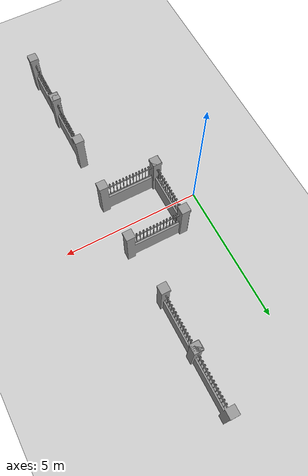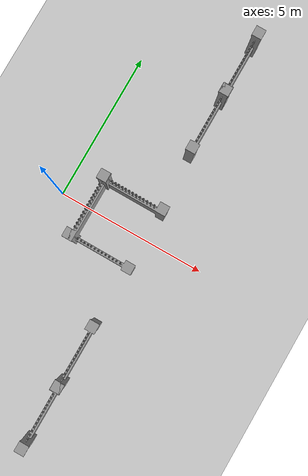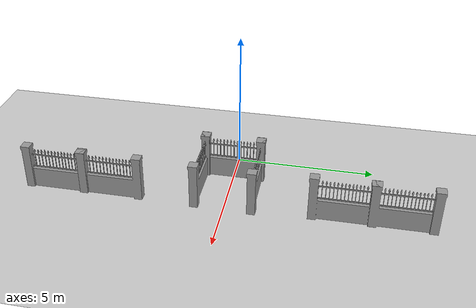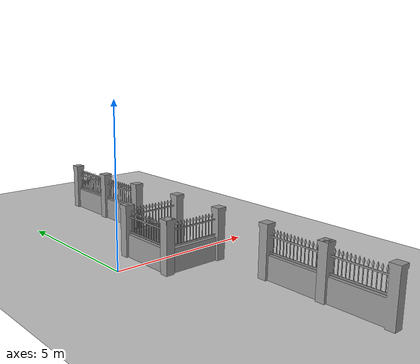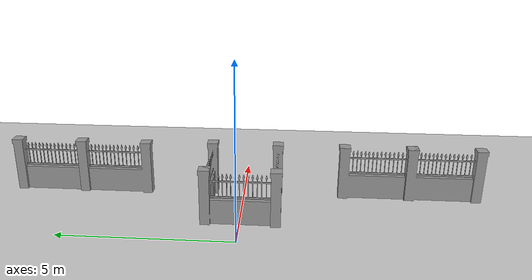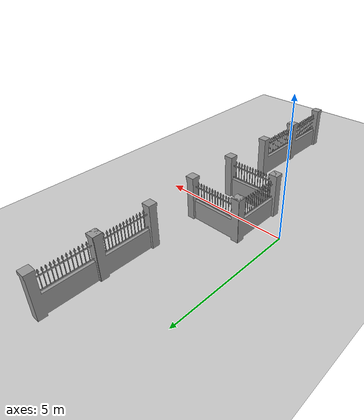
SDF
<sdf version="1.6">
 <world name="default">
  <light name="sun" type="directional">
   <pose>0 0 10 0 -0 0</pose>
   <diffuse>0.8 0.8 0.8 1</diffuse>
   <specular>0.2 0.2 0.2 1</specular>
   <attenuation>
    <range>1000</range>
    <constant>0.9</constant>
    <linear>0.01</linear>
    <quadratic>0.001</quadratic>
   </attenuation>
   <direction>-0.5 0.1 -0.9</direction>
  </light>
  <model name="ground_plane">
   <static>1</static>
   <link name="link">
    <collision name="collision">
     <geometry><plane><normal>0 0 1</normal><size>100 100</size></plane></geometry>
     <surface>
      <contact><collide_bitmask>65535</collide_bitmask></contact>
      <friction><ode><mu>100</mu><mu2>50</mu2></ode></friction>
     </surface>
    </collision>
    <visual name="visual">
     <cast_shadows>0</cast_shadows>
     <geometry><plane><normal>0 0 1</normal><size>100 100</size></plane></geometry>
     <material>
      <script><uri>file://media/materials/scripts/gazebo.material</uri><name>Gazebo/Grey</name></script>
     </material>
    </visual>
   </link>
  </model>
  <gravity>0 0 -9.8</gravity>
  <magnetic_field>6e-06 2.3e-05 -4.2e-05</magnetic_field>
  <atmosphere type="adiabatic"/>
  <physics name="default_physics" default="0" type="ode">
   <max_step_size>0.001</max_step_size>
   <real_time_factor>1</real_time_factor>
   <real_time_update_rate>1000</real_time_update_rate>
  </physics>
  <scene><ambient>0.4 0.4 0.4 1</ambient><background>0.7 0.7 0.7 1</background><shadows>1</shadows></scene>
  <audio><device>default</device></audio>
  <spherical_coordinates>
   <surface_model>EARTH_WGS84</surface_model>
   <latitude_deg>0</latitude_deg>
   <longitude_deg>0</longitude_deg>
   <elevation>0</elevation>
   <heading_deg>0</heading_deg>
  </spherical_coordinates>
  <model name="between">
   <link name="link_2">
    <inertial>
     <mass>1</mass>
     <inertia>
      <ixx>0.166667</ixx>
      <ixy>0</ixy>
      <ixz>0</ixz>
      <iyy>0.166667</iyy>
      <iyz>0</iyz>
      <izz>0.166667</izz>
     </inertia>
    </inertial>
    <pose>-1.3748 -0.012991 0 0 0 -1.5708</pose>
    <visual name="visual">
     <geometry><mesh><uri>file://meshes/wall.stl</uri><scale>1 1 1</scale></mesh></geometry>
     <material>
      <lighting>1</lighting>
      <script><uri>file://media/materials/scripts/gazebo.material</uri><name>Gazebo/Grey</name></script>
      <shader type="vertex"><normal_map>__default__</normal_map></shader>
      <ambient>0.3 0.3 0.3 1</ambient>
      <diffuse>0.7 0.7 0.7 1</diffuse>
      <specular>0.01 0.01 0.01 1</specular>
      <emissive>0 0 0 1</emissive>
     </material>
    </visual>
    <collision name="collision">
     <geometry><mesh><uri>file://meshes/wall.stl</uri><scale>1 1 1</scale></mesh></geometry>
     <surface>
      <friction>
       <ode><mu>1</mu><mu2>1</mu2><fdir1>0 0 0</fdir1><slip1>0</slip1><slip2>0</slip2></ode>
       <torsional>
        <coefficient>1</coefficient>
        <patch_radius>0</patch_radius>
        <surface_radius>0</surface_radius>
        <use_patch_radius>1</use_patch_radius>
        <ode><slip>0</slip></ode>
       </torsional>
      </friction>
      <bounce><restitution_coefficient>0</restitution_coefficient><threshold>1e+06</threshold></bounce>
      <contact>
       <collide_without_contact>0</collide_without_contact>
       <collide_without_contact_bitmask>1</collide_without_contact_bitmask>
       <collide_bitmask>1</collide_bitmask>
       <ode>
        <soft_cfm>0</soft_cfm>
        <soft_erp>0.2</soft_erp>
        <kp>1e+13</kp>
        <kd>1</kd>
        <max_vel>0.01</max_vel>
        <min_depth>0</min_depth>
       </ode>
       <bullet>
        <split_impulse>1</split_impulse>
        <split_impulse_penetration_threshold>-0.01</split_impulse_penetration_threshold>
        <soft_cfm>0</soft_cfm>
        <soft_erp>0.2</soft_erp>
        <kp>1e+13</kp>
        <kd>1</kd>
       </bullet>
      </contact>
     </surface>
    </collision>
   </link>
   <link name="link_2_clone">
    <inertial>
     <mass>1</mass>
     <inertia>
      <ixx>0.166667</ixx>
      <ixy>0</ixy>
      <ixz>0</ixz>
      <iyy>0.166667</iyy>
      <iyz>0</iyz>
      <izz>0.166667</izz>
     </inertia>
    </inertial>
    <pose>0.567999 -4.01809 0 0 0 -1.5708</pose>
    <visual name="visual">
     <geometry><mesh><uri>file://meshes/wall.stl</uri><scale>1 1 1</scale></mesh></geometry>
     <material>
      <lighting>1</lighting>
      <script><uri>file://media/materials/scripts/gazebo.material</uri><name>Gazebo/Grey</name></script>
      <shader type="vertex"><normal_map>__default__</normal_map></shader>
      <ambient>0.3 0.3 0.3 1</ambient>
      <diffuse>0.7 0.7 0.7 1</diffuse>
      <specular>0.01 0.01 0.01 1</specular>
      <emissive>0 0 0 1</emissive>
     </material>
    </visual>
    <collision name="collision">
     <geometry><mesh><uri>file://meshes/wall.stl</uri><scale>1 1 1</scale></mesh></geometry>
     <surface>
      <friction>
       <ode><mu>1</mu><mu2>1</mu2><fdir1>0 0 0</fdir1><slip1>0</slip1><slip2>0</slip2></ode>
       <torsional>
        <coefficient>1</coefficient>
        <patch_radius>0</patch_radius>
        <surface_radius>0</surface_radius>
        <use_patch_radius>1</use_patch_radius>
        <ode><slip>0</slip></ode>
       </torsional>
      </friction>
      <bounce><restitution_coefficient>0</restitution_coefficient><threshold>1e+06</threshold></bounce>
      <contact>
       <collide_without_contact>0</collide_without_contact>
       <collide_without_contact_bitmask>1</collide_without_contact_bitmask>
       <collide_bitmask>1</collide_bitmask>
       <ode>
        <soft_cfm>0</soft_cfm>
        <soft_erp>0.2</soft_erp>
        <kp>1e+13</kp>
        <kd>1</kd>
        <max_vel>0.01</max_vel>
        <min_depth>0</min_depth>
       </ode>
       <bullet>
        <split_impulse>1</split_impulse>
        <split_impulse_penetration_threshold>-0.01</split_impulse_penetration_threshold>
        <soft_cfm>0</soft_cfm>
        <soft_erp>0.2</soft_erp>
        <kp>1e+13</kp>
        <kd>1</kd>
       </bullet>
      </contact>
     </surface>
    </collision>
   </link>
   <link name="link_2_clone_0">
    <inertial>
     <mass>1</mass>
     <inertia>
      <ixx>0.166667</ixx>
      <ixy>0</ixy>
      <ixz>0</ixz>
      <iyy>0.166667</iyy>
      <iyz>0</iyz>
      <izz>0.166667</izz>
     </inertia>
    </inertial>
    <pose>0.490312 4.0369 0 0 0 -1.5708</pose>
    <visual name="visual">
     <geometry><mesh><uri>file://meshes/wall.stl</uri><scale>1 1 1</scale></mesh></geometry>
     <material>
      <lighting>1</lighting>
      <script><uri>file://media/materials/scripts/gazebo.material</uri><name>Gazebo/Grey</name></script>
      <shader type="vertex"><normal_map>__default__</normal_map></shader>
      <ambient>0.3 0.3 0.3 1</ambient>
      <diffuse>0.7 0.7 0.7 1</diffuse>
      <specular>0.01 0.01 0.01 1</specular>
      <emissive>0 0 0 1</emissive>
     </material>
    </visual>
    <collision name="collision">
     <geometry><mesh><uri>file://meshes/wall.stl</uri><scale>1 1 1</scale></mesh></geometry>
     <surface>
      <friction>
       <ode><mu>1</mu><mu2>1</mu2><fdir1>0 0 0</fdir1><slip1>0</slip1><slip2>0</slip2></ode>
       <torsional>
        <coefficient>1</coefficient>
        <patch_radius>0</patch_radius>
        <surface_radius>0</surface_radius>
        <use_patch_radius>1</use_patch_radius>
        <ode><slip>0</slip></ode>
       </torsional>
      </friction>
      <bounce><restitution_coefficient>0</restitution_coefficient><threshold>1e+06</threshold></bounce>
      <contact>
       <collide_without_contact>0</collide_without_contact>
       <collide_without_contact_bitmask>1</collide_without_contact_bitmask>
       <collide_bitmask>1</collide_bitmask>
       <ode>
        <soft_cfm>0</soft_cfm>
        <soft_erp>0.2</soft_erp>
        <kp>1e+13</kp>
        <kd>1</kd>
        <max_vel>0.01</max_vel>
        <min_depth>0</min_depth>
       </ode>
       <bullet>
        <split_impulse>1</split_impulse>
        <split_impulse_penetration_threshold>-0.01</split_impulse_penetration_threshold>
        <soft_cfm>0</soft_cfm>
        <soft_erp>0.2</soft_erp>
        <kp>1e+13</kp>
        <kd>1</kd>
       </bullet>
      </contact>
     </surface>
    </collision>
   </link>
   <link name="link_2_clone_1">
    <inertial>
     <mass>1</mass>
     <inertia>
      <ixx>0.166667</ixx>
      <ixy>0</ixy>
      <ixz>0</ixz>
      <iyy>0.166667</iyy>
      <iyz>0</iyz>
      <izz>0.166667</izz>
     </inertia>
    </inertial>
    <pose>0.560972 -6.02944 0 0 0 -1.5708</pose>
    <visual name="visual">
     <geometry><mesh><uri>file://meshes/wall.stl</uri><scale>1 1 1</scale></mesh></geometry>
     <material>
      <lighting>1</lighting>
      <script><uri>file://media/materials/scripts/gazebo.material</uri><name>Gazebo/Grey</name></script>
      <shader type="vertex"><normal_map>__default__</normal_map></shader>
      <ambient>0.3 0.3 0.3 1</ambient>
      <diffuse>0.7 0.7 0.7 1</diffuse>
      <specular>0.01 0.01 0.01 1</specular>
      <emissive>0 0 0 1</emissive>
     </material>
    </visual>
    <collision name="collision">
     <geometry><mesh><uri>file://meshes/wall.stl</uri><scale>1 1 1</scale></mesh></geometry>
     <surface>
      <friction>
       <ode><mu>1</mu><mu2>1</mu2><fdir1>0 0 0</fdir1><slip1>0</slip1><slip2>0</slip2></ode>
       <torsional>
        <coefficient>1</coefficient>
        <patch_radius>0</patch_radius>
        <surface_radius>0</surface_radius>
        <use_patch_radius>1</use_patch_radius>
        <ode><slip>0</slip></ode>
       </torsional>
      </friction>
      <bounce><restitution_coefficient>0</restitution_coefficient><threshold>1e+06</threshold></bounce>
      <contact>
       <collide_without_contact>0</collide_without_contact>
       <collide_without_contact_bitmask>1</collide_without_contact_bitmask>
       <collide_bitmask>1</collide_bitmask>
       <ode>
        <soft_cfm>0</soft_cfm>
        <soft_erp>0.2</soft_erp>
        <kp>1e+13</kp>
        <kd>1</kd>
        <max_vel>0.01</max_vel>
        <min_depth>0</min_depth>
       </ode>
       <bullet>
        <split_impulse>1</split_impulse>
        <split_impulse_penetration_threshold>-0.01</split_impulse_penetration_threshold>
        <soft_cfm>0</soft_cfm>
        <soft_erp>0.2</soft_erp>
        <kp>1e+13</kp>
        <kd>1</kd>
       </bullet>
      </contact>
     </surface>
    </collision>
   </link>
   <link name="link_2_clone_2">
    <inertial>
     <mass>1</mass>
     <inertia>
      <ixx>0.166667</ixx>
      <ixy>0</ixy>
      <ixz>0</ixz>
      <iyy>0.166667</iyy>
      <iyz>0</iyz>
      <izz>0.166667</izz>
     </inertia>
    </inertial>
    <pose>0.501116 6.04854 0 0 0 -1.5708</pose>
    <visual name="visual">
     <geometry><mesh><uri>file://meshes/wall.stl</uri><scale>1 1 1</scale></mesh></geometry>
     <material>
      <lighting>1</lighting>
      <script><uri>file://media/materials/scripts/gazebo.material</uri><name>Gazebo/Grey</name></script>
      <shader type="vertex"><normal_map>__default__</normal_map></shader>
      <ambient>0.3 0.3 0.3 1</ambient>
      <diffuse>0.7 0.7 0.7 1</diffuse>
      <specular>0.01 0.01 0.01 1</specular>
      <emissive>0 0 0 1</emissive>
     </material>
    </visual>
    <collision name="collision">
     <geometry><mesh><uri>file://meshes/wall.stl</uri><scale>1 1 1</scale></mesh></geometry>
     <surface>
      <friction>
       <ode><mu>1</mu><mu2>1</mu2><fdir1>0 0 0</fdir1><slip1>0</slip1><slip2>0</slip2></ode>
       <torsional>
        <coefficient>1</coefficient>
        <patch_radius>0</patch_radius>
        <surface_radius>0</surface_radius>
        <use_patch_radius>1</use_patch_radius>
        <ode><slip>0</slip></ode>
       </torsional>
      </friction>
      <bounce><restitution_coefficient>0</restitution_coefficient><threshold>1e+06</threshold></bounce>
      <contact>
       <collide_without_contact>0</collide_without_contact>
       <collide_without_contact_bitmask>1</collide_without_contact_bitmask>
       <collide_bitmask>1</collide_bitmask>
       <ode>
        <soft_cfm>0</soft_cfm>
        <soft_erp>0.2</soft_erp>
        <kp>1e+13</kp>
        <kd>1</kd>
        <max_vel>0.01</max_vel>
        <min_depth>0</min_depth>
       </ode>
       <bullet>
        <split_impulse>1</split_impulse>
        <split_impulse_penetration_threshold>-0.01</split_impulse_penetration_threshold>
        <soft_cfm>0</soft_cfm>
        <soft_erp>0.2</soft_erp>
        <kp>1e+13</kp>
        <kd>1</kd>
       </bullet>
      </contact>
     </surface>
    </collision>
   </link>
   <link name="link_3">
    <inertial>
     <mass>1</mass>
     <inertia>
      <ixx>0.166667</ixx>
      <ixy>0</ixy>
      <ixz>0</ixz>
      <iyy>0.166667</iyy>
      <iyz>0</iyz>
      <izz>0.166667</izz>
     </inertia>
    </inertial>
    <pose>-0.362126 0.987242 0 0 -0 0</pose>
    <visual name="visual">
     <geometry><mesh><uri>file://meshes/wall.stl</uri><scale>1 1 1</scale></mesh></geometry>
     <material>
      <lighting>1</lighting>
      <script><uri>file://media/materials/scripts/gazebo.material</uri><name>Gazebo/Grey</name></script>
      <shader type="vertex"><normal_map>__default__</normal_map></shader>
      <ambient>0.3 0.3 0.3 1</ambient>
      <diffuse>0.7 0.7 0.7 1</diffuse>
      <specular>0.01 0.01 0.01 1</specular>
      <emissive>0 0 0 1</emissive>
     </material>
    </visual>
    <collision name="collision">
     <geometry><mesh><uri>file://meshes/wall.stl</uri><scale>1 1 1</scale></mesh></geometry>
     <surface>
      <friction>
       <ode><mu>1</mu><mu2>1</mu2><fdir1>0 0 0</fdir1><slip1>0</slip1><slip2>0</slip2></ode>
       <torsional>
        <coefficient>1</coefficient>
        <patch_radius>0</patch_radius>
        <surface_radius>0</surface_radius>
        <use_patch_radius>1</use_patch_radius>
        <ode><slip>0</slip></ode>
       </torsional>
      </friction>
      <bounce><restitution_coefficient>0</restitution_coefficient><threshold>1e+06</threshold></bounce>
      <contact>
       <collide_without_contact>0</collide_without_contact>
       <collide_without_contact_bitmask>1</collide_without_contact_bitmask>
       <collide_bitmask>1</collide_bitmask>
       <ode>
        <soft_cfm>0</soft_cfm>
        <soft_erp>0.2</soft_erp>
        <kp>1e+13</kp>
        <kd>1</kd>
        <max_vel>0.01</max_vel>
        <min_depth>0</min_depth>
       </ode>
       <bullet>
        <split_impulse>1</split_impulse>
        <split_impulse_penetration_threshold>-0.01</split_impulse_penetration_threshold>
        <soft_cfm>0</soft_cfm>
        <soft_erp>0.2</soft_erp>
        <kp>1e+13</kp>
        <kd>1</kd>
       </bullet>
      </contact>
     </surface>
    </collision>
   </link>
   <link name="link_3_clone">
    <inertial>
     <mass>1</mass>
     <inertia>
      <ixx>0.166667</ixx>
      <ixy>0</ixy>
      <ixz>0</ixz>
      <iyy>0.166667</iyy>
      <iyz>0</iyz>
      <izz>0.166667</izz>
     </inertia>
    </inertial>
    <pose>-0.38347 -1.01218 0 0 -0 0</pose>
    <visual name="visual">
     <geometry><mesh><uri>file://meshes/wall.stl</uri><scale>1 1 1</scale></mesh></geometry>
     <material>
      <lighting>1</lighting>
      <script><uri>file://media/materials/scripts/gazebo.material</uri><name>Gazebo/Grey</name></script>
      <shader type="vertex"><normal_map>__default__</normal_map></shader>
      <ambient>0.3 0.3 0.3 1</ambient>
      <diffuse>0.7 0.7 0.7 1</diffuse>
      <specular>0.01 0.01 0.01 1</specular>
      <emissive>0 0 0 1</emissive>
     </material>
    </visual>
    <collision name="collision">
     <geometry><mesh><uri>file://meshes/wall.stl</uri><scale>1 1 1</scale></mesh></geometry>
     <surface>
      <friction>
       <ode><mu>1</mu><mu2>1</mu2><fdir1>0 0 0</fdir1><slip1>0</slip1><slip2>0</slip2></ode>
       <torsional>
        <coefficient>1</coefficient>
        <patch_radius>0</patch_radius>
        <surface_radius>0</surface_radius>
        <use_patch_radius>1</use_patch_radius>
        <ode><slip>0</slip></ode>
       </torsional>
      </friction>
      <bounce><restitution_coefficient>0</restitution_coefficient><threshold>1e+06</threshold></bounce>
      <contact>
       <collide_without_contact>0</collide_without_contact>
       <collide_without_contact_bitmask>1</collide_without_contact_bitmask>
       <collide_bitmask>1</collide_bitmask>
       <ode>
        <soft_cfm>0</soft_cfm>
        <soft_erp>0.2</soft_erp>
        <kp>1e+13</kp>
        <kd>1</kd>
        <max_vel>0.01</max_vel>
        <min_depth>0</min_depth>
       </ode>
       <bullet>
        <split_impulse>1</split_impulse>
        <split_impulse_penetration_threshold>-0.01</split_impulse_penetration_threshold>
        <soft_cfm>0</soft_cfm>
        <soft_erp>0.2</soft_erp>
        <kp>1e+13</kp>
        <kd>1</kd>
       </bullet>
      </contact>
     </surface>
    </collision>
   </link>
   <static>0</static>
   <pose>2.41371 -0.020344 0 0 -0 0</pose>
  </model>
 </world>
</sdf>
